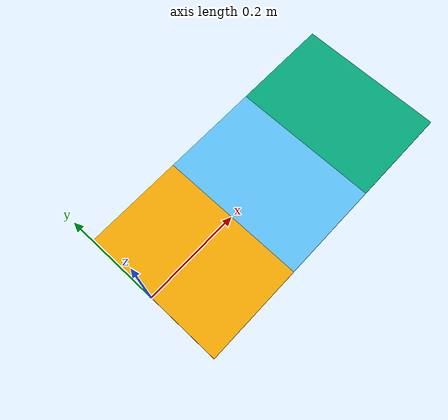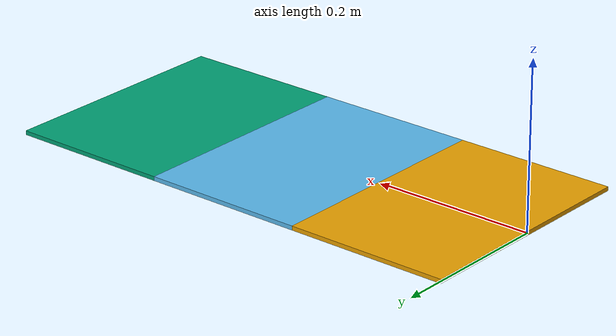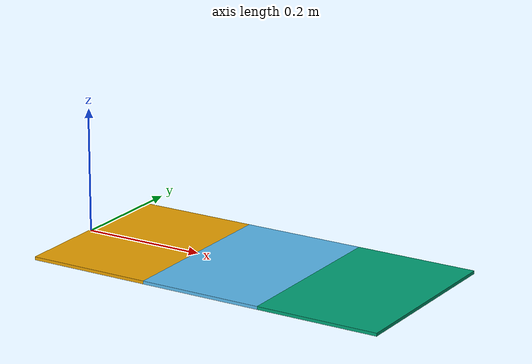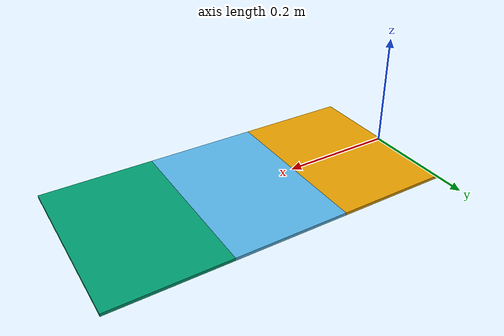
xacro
<?xml version="1.0"?>
<robot xmlns:xacro="http://www.ros.org/wiki/xacro" name="cardboard">

    <xacro:property name="length" value=".60" />
    <xacro:property name="width" value=".30" />
    <xacro:property name="thickness" value=".005" />
    <xacro:property name="joints" value="2" />

    <link name="base_link">
    <visual>
        <geometry>
            <box size="${length/(joints+1)} ${width} ${thickness}"/>
        </geometry>
        <origin rpy="0 0 0" xyz="${0.5*length/(joints+1)} 0 0"/>
    </visual>
    </link>

    <!-- Hacky way to implement a "for" loop for between 0 and 5 joints -->
    <xacro:if value="${joints>0}">

        <link name="link_1">
            <visual>
                <geometry>
                    <box size="${length/(joints+1)} ${width} ${thickness}"/>
                </geometry>
                <origin rpy="0 0 0" xyz="${0.5*length/(joints+1)} 0 0"/>
            </visual>
        </link>

        <joint name="joint_1" type="revolute">
            <axis xyz="0 1 0"/>
            <limit effort="1000.0" lower="-2.96705973" upper="2.96705973" velocity="0.5"/>
            <origin rpy="0 0 0" xyz="${length/(joints+1)} 0.0 0"/>
            <parent link="base_link"/>
            <child link="link_1"/>
        </joint>

    </xacro:if>

    <xacro:if value="${joints>1}">

        <link name="link_2">
            <visual>
                <geometry>
                    <box size="${length/(joints+1)} ${width} ${thickness}"/>
                </geometry>
                <origin rpy="0 0 0" xyz="${0.5*length/(joints+1)} 0 0"/>
            </visual>
        </link>

        <joint name="joint_2" type="revolute">
            <axis xyz="0 1 0"/>
            <limit effort="1000.0" lower="-2.96705973" upper="2.96705973" velocity="0.5"/>
            <origin rpy="0 0 0" xyz="${length/(joints+1)} 0.0 0"/>
            <parent link="link_1"/>
            <child link="link_2"/>
        </joint>

    </xacro:if>

    <xacro:if value="${joints>2}">

        <link name="link_3">
            <visual>
                <geometry>
                    <box size="${length/(joints+1)} ${width} ${thickness}"/>
                </geometry>
                <origin rpy="0 0 0" xyz="${0.5*length/(joints+1)} 0 0"/>
            </visual>
        </link>

        <joint name="joint_3" type="revolute">
            <axis xyz="0 1 0"/>
            <limit effort="1000.0" lower="-2.96705973" upper="2.96705973" velocity="0.5"/>
            <origin rpy="0 0 0" xyz="${length/(joints+1)} 0.0 0"/>
            <parent link="link_2"/>
            <child link="link_3"/>
        </joint>

    </xacro:if>

    <xacro:if value="${joints>3}">

        <link name="link_4">
            <visual>
                <geometry>
                    <box size="${length/(joints+1)} ${width} ${thickness}"/>
                </geometry>
                <origin rpy="0 0 0" xyz="${0.5*length/(joints+1)} 0 0"/>
            </visual>
        </link>

        <joint name="joint_4" type="revolute">
            <axis xyz="0 1 0"/>
            <limit effort="1000.0" lower="-2.96705973" upper="2.96705973" velocity="0.5"/>
            <origin rpy="0 0 0" xyz="${length/(joints+1)} 0.0 0"/>
            <parent link="link_3"/>
            <child link="link_4"/>
        </joint>

    </xacro:if>

    <xacro:if value="${joints>4}">

        <link name="link_5">
            <visual>
                <geometry>
                    <box size="${length/(joints+1)} ${width} ${thickness}"/>
                </geometry>
                <origin rpy="0 0 0" xyz="${0.5*length/(joints+1)} 0 0"/>
            </visual>
        </link>

        <joint name="joint_5" type="revolute">
            <axis xyz="0 1 0"/>
            <limit effort="1000.0" lower="-2.96705973" upper="2.96705973" velocity="0.5"/>
            <origin rpy="0 0 0" xyz="${length/(joints+1)} 0.0 0"/>
            <parent link="link_4"/>
            <child link="link_5"/>
        </joint>

    </xacro:if>

</robot>
